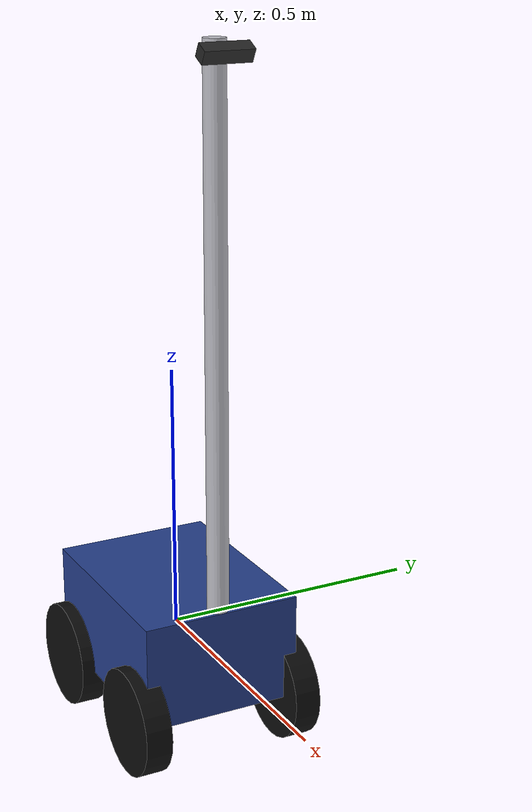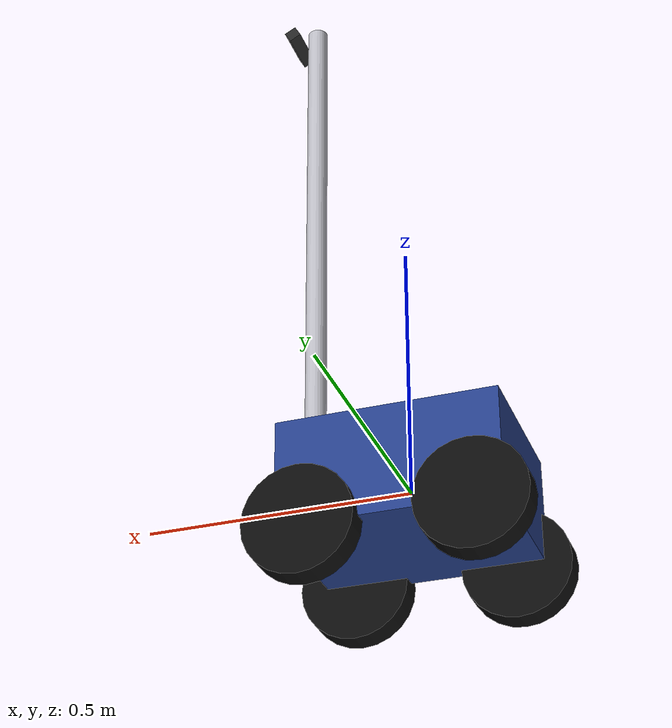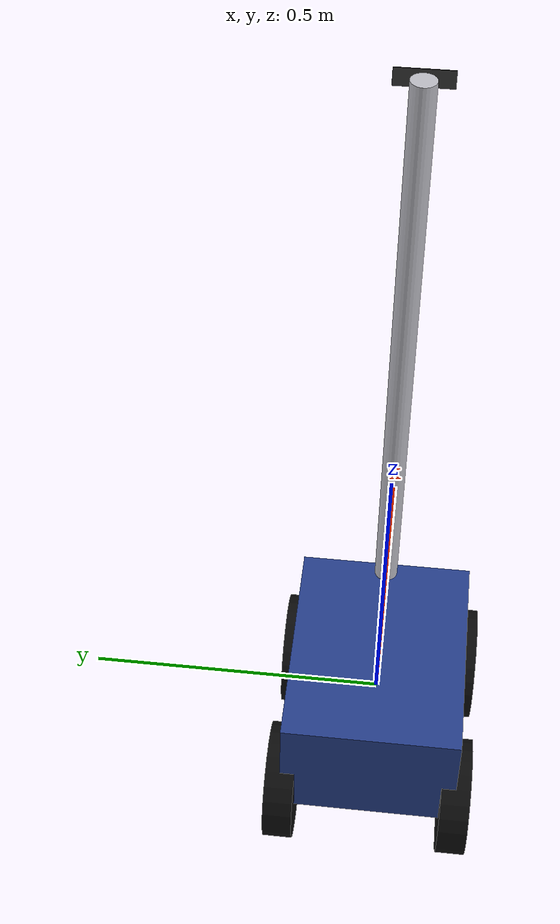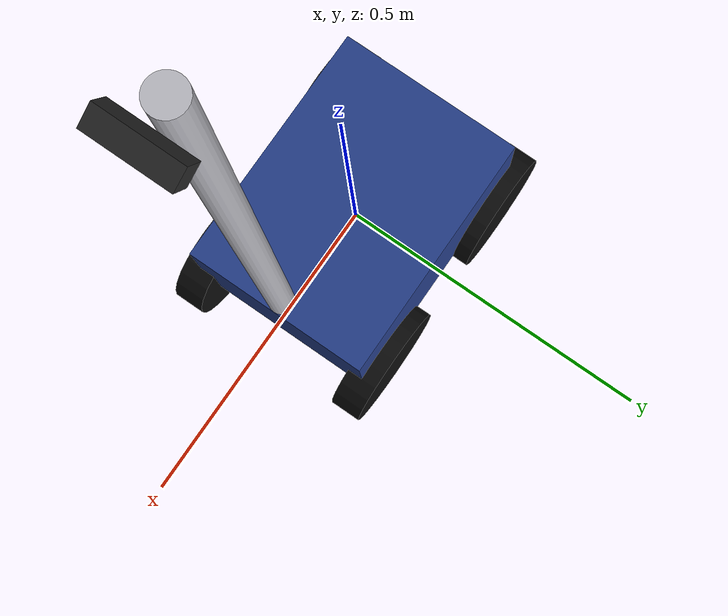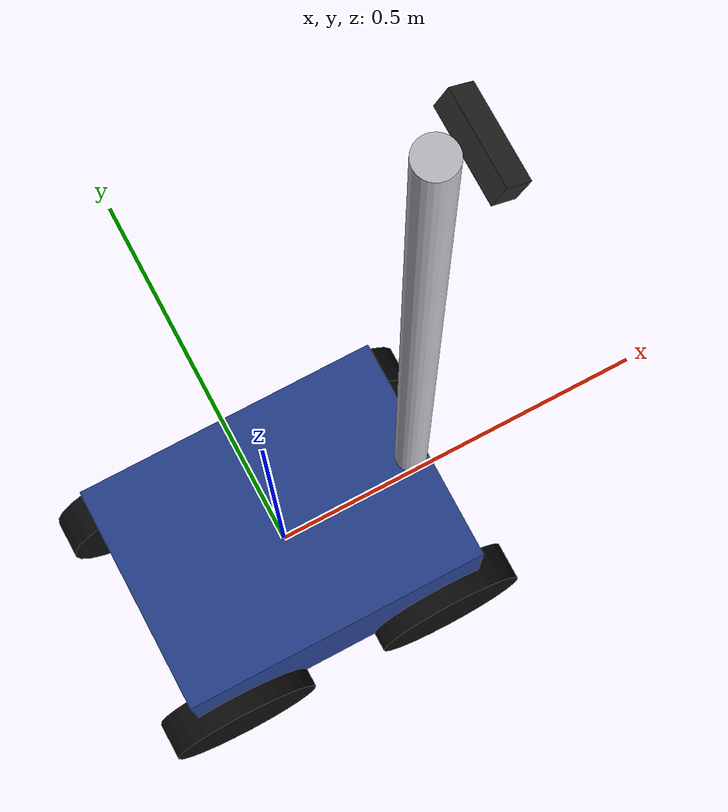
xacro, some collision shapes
<?xml version="1.0"?>

<robot name="mobile_robot" xmlns:xacro="http://www.ros.org/wiki/xacro">

    <xacro:arg name="robot_namespace" default=""/>

    <xacro:include filename="base.xacro"/>
    <xacro:include filename="wheels.xacro"/>
    <xacro:include filename="sensors.xacro"/>
    <xacro:include filename="materials.xacro"/>

    <xacro:include filename="ros2_control.xacro"/>
    <xacro:include filename="gazebo.xacro"/>

</robot>

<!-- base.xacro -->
<robot xmlns:xacro="http://www.ros.org/wiki/xacro">

<xacro:property name="base_length" value="0.40"/>
<xacro:property name="base_width" value="0.30"/>
<xacro:property name="base_height" value="0.20"/>
<xacro:property name="base_mass" value="10.0"/>

<link name="base_link">

    <visual>
        <geometry>
            <box size="${base_length} ${base_width} ${base_height}"/>
        </geometry>
        <material name="robot_blue"/>
    </visual>

    <collision>
        <geometry>
            <box size="${base_length} ${base_width} ${base_height}"/>
        </geometry>
    </collision>

    <inertial>
        <origin xyz="0 0 0"/>
        <mass value="${base_mass}"/>
        <inertia
            ixx="${1/12 * base_mass * (base_height*base_height + base_width*base_width)}"
            iyy="${1/12 * base_mass * (base_height*base_height + base_length*base_length)}"
            izz="${1/12 * base_mass * (base_length*base_length + base_width*base_width)}"
            ixy="0"
            ixz="0"
            iyz="0"/>
    </inertial>
</link>
</robot>

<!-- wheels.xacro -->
<robot xmlns:xacro="http://www.ros.org/wiki/xacro">

<xacro:property name="wheel_radius" value="0.1"/>
<xacro:property name="wheel_width" value="0.05"/>
<xacro:property name="wheel_mass" value="0.8"/>

<xacro:macro name="wheel" params="name x y">
    <link name="${name}">
        <visual>
            <origin rpy="1.5708 0 0"/>
            <geometry>
                <cylinder radius="${wheel_radius}"
                        length="${wheel_width}"/>
            </geometry>
            <material name="rubber_black"/>
        </visual>

        <collision>
            <origin rpy="1.5708 0 0"/>
            <geometry>
                <cylinder radius="${wheel_radius}"
                        length="${wheel_width}"/>
            </geometry>
        </collision>

        <inertial>
            <origin xyz="0 0 0"/>
            <mass value="${wheel_mass}"/>
            <inertia
                ixx="${1/12 * wheel_mass * (3*wheel_radius*wheel_radius + wheel_width*wheel_width)}"
                iyy="${1/2 * wheel_mass*(wheel_radius*wheel_radius)}"
                izz="${1/12 * wheel_mass * (3*wheel_radius*wheel_radius + wheel_width*wheel_width)}"
                ixy="0"
                ixz="0"
                iyz="0"/>
        </inertial>
    </link>

    <joint name="${name}_joint" type="continuous">
        <parent link="base_link"/>
        <child link="${name}"/>
        <origin xyz="${x} ${y} -0.1"/>
        <axis xyz="0 1 0"/>
    </joint>
</xacro:macro>

<xacro:wheel name="fr_wheel" x="0.15" y="-0.15"/>
<xacro:wheel name="fl_wheel" x="0.15" y="0.15"/>
<xacro:wheel name="br_wheel" x="-0.15" y="-0.15"/>
<xacro:wheel name="bl_wheel" x="-0.15" y="0.15"/>

</robot>

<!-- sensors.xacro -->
<robot xmlns:xacro="http://www.ros.org/wiki/xacro">

  <xacro:property name="mast_height" value="1.0"/>
  <xacro:property name="mast_radius" value="0.020"/>
  <xacro:property name="mast_mass" value="${0.44 * mast_height}"/> <!-- Generic density of 20x20 extruded aluminium-->

  <xacro:property name="camera_depth" value="0.025"/>
  <xacro:property name="camera_width" value="0.09"/>
  <xacro:property name="camera_height" value="0.025"/>
  <xacro:property name="camera_mass" value="0.2"/>
  <xacro:property name="camera_angle" value="0.5"/>

  <link name="camera_mast_link">
    <visual>
      <geometry>
        <cylinder
          radius="${mast_radius}"
          length="${mast_height}"/>
      </geometry>
      <material name="aluminum"/>
    </visual>

    <collision>
      <geometry>
        <cylinder
          radius="${mast_radius}"
          length="${mast_height}"/>
      </geometry>
    </collision>

    <inertial>
      <mass value="${mast_mass}"/>
      <origin xyz="0 0 0"/>
      <inertia
        ixx="${1/3 * mast_mass * mast_height*mast_height}"
        iyy="${1/3 * mast_mass * mast_height*mast_height}"
        izz="0"
        ixy="0"
        ixz="0"
        iyz="0"/>
    </inertial>
  </link>

  <joint name="camera_mast_joint" type="fixed">
    <parent link="base_link"/>
    <child link="camera_mast_link"/>

    <!-- Front of robot -->
    <origin
      xyz="0.18 0.0 0.60"
      rpy="0 0 0"/>
  </joint>

  <link name="camera_link">
    <visual>
      <origin rpy="1.57 0 1.57"/>
      <geometry>
        <mesh filename="file://$(find robot_description)/meshes/d435.dae"
              scale="1 1 1"/>
      </geometry>
      <material name="dark_grey">
        <color rgba="0.15 0.15 0.15 1"/>
      </material>
    </visual>

    <collision>
      <geometry>
        <box size="${camera_depth} ${camera_width} ${camera_height}"/>
      </geometry>
    </collision>

    <inertial>
      <mass value="0.2"/>
      <origin xyz="0 0 -${mast_height/2}"/>
      <inertia
        ixx="${1/12 * camera_mass * (camera_height*camera_height + camera_width*camera_width)}"
        iyy="${1/12 * camera_mass * (camera_height*camera_height + camera_depth*camera_depth)}"
        izz="${1/12 * camera_mass * (camera_depth*camera_depth + camera_width*camera_width)}"
        ixy="0"
        ixz="0"
        iyz="0"/>
    </inertial>
  </link>

  <joint name="camera_joint" type="fixed">
    <parent link="camera_mast_link"/>
    <child link="camera_link"/>

    <origin
      xyz="0.04 0 ${mast_height/2 - 0.02}"
      rpy="0 ${camera_angle} 0"/>
  </joint>

  <link name="camera_optical_link"/>

  <joint name="camera_optical_joint" type="fixed">
    <parent link="camera_link"/>
    <child link="camera_optical_link"/>

    <!-- REP-103 optical frame -->
    <origin
      xyz="0 0 0"
      rpy="-1.57079632679 0 -1.57079632679"/>
  </joint>

</robot>

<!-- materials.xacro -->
<robot xmlns:xacro="http://www.ros.org/wiki/xacro">

    <!-- Body -->
    <material name="robot_blue">
        <color rgba="0.15 0.25 0.55 1.0"/>
    </material>

    <material name="robot_gray">
        <color rgba="0.35 0.35 0.35 1.0"/>
    </material>

    <!-- Wheels -->
    <material name="rubber_black">
        <color rgba="0.05 0.05 0.05 1.0"/>
    </material>

    <!-- Mast -->
    <material name="aluminum">
        <color rgba="0.75 0.75 0.78 1.0"/>
    </material>

    <!-- Camera -->
    <material name="camera_body">
        <color rgba="0.90 0.90 0.90 1.0"/>
    </material>

    <material name="camera_front">
        <color rgba="0.10 0.10 0.10 1.0"/>
    </material>

</robot>
